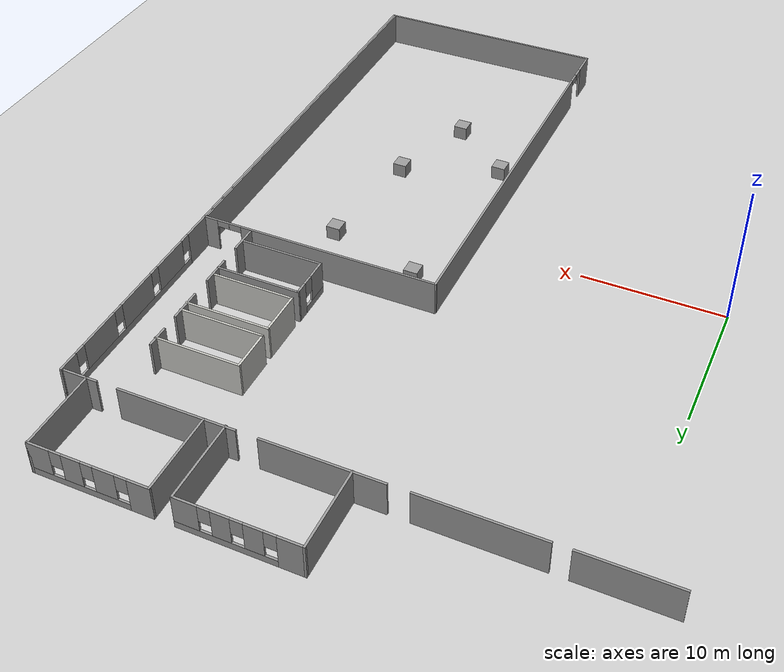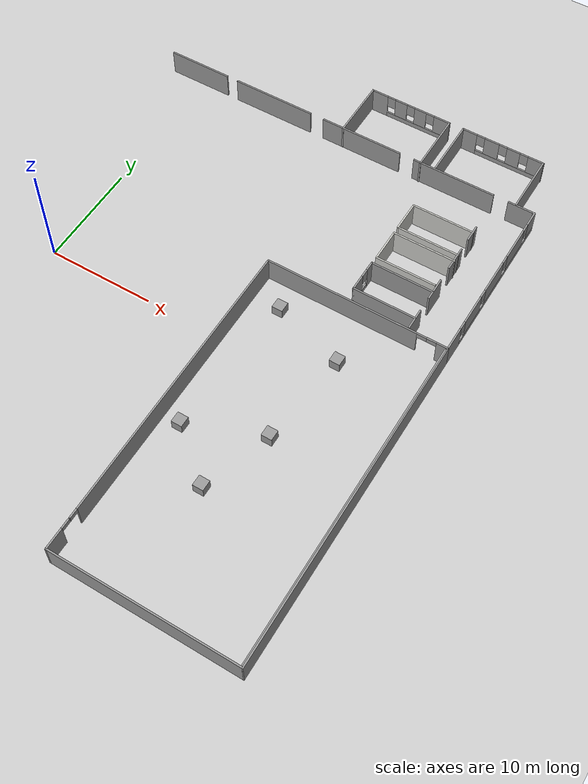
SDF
<sdf version="1.6">
 <world name="default">
  <model name="ground_plane">
   <static>1</static>
   <link name="link">
    <collision name="collision">
     <geometry><plane><normal>0 0 1</normal><size>100 100</size></plane></geometry>
     <surface>
      <contact><collide_bitmask>65535</collide_bitmask></contact>
      <friction><ode><mu>100</mu><mu2>50</mu2></ode></friction>
     </surface>
    </collision>
    <visual name="visual">
     <cast_shadows>0</cast_shadows>
     <geometry><plane><normal>0 0 1</normal><size>100 100</size></plane></geometry>
     <material>
      <script><uri>file://media/materials/scripts/gazebo.material</uri><name>Gazebo/Grey</name></script>
     </material>
    </visual>
   </link>
  </model>
  <model name="firstFloor">
   <pose>-0.1165 3.07366 0 0 -0 0</pose>
   <link name="Wall_0">
    <pose>17.6408 -10.9848 0 0 0 -1.5708</pose>
    <visual name="Wall_0_Visual_0">
     <pose>-1.92288 0 1.25 0 -0 0</pose>
     <geometry><box><size>27.1542 0.15 2.5</size></box></geometry>
     <material>
      <script><uri>file://media/materials/scripts/gazebo.material</uri><name>Gazebo/Grey</name></script>
      <ambient>1 1 1 1</ambient>
     </material>
     <meta><layer>0</layer></meta>
    </visual>
    <collision name="Wall_0_Collision_0">
     <geometry><box><size>27.1542 0.15 2.5</size></box></geometry>
     <pose>-1.92288 0 1.25 0 -0 0</pose>
    </collision>
    <visual name="Wall_0_Visual_2">
     <pose>14.5086 0 1.25 0 -0 0</pose>
     <geometry><box><size>1.98281 0.15 2.5</size></box></geometry>
     <material>
      <script><uri>file://media/materials/scripts/gazebo.material</uri><name>Gazebo/Grey</name></script>
      <ambient>1 1 1 1</ambient>
     </material>
     <meta><layer>0</layer></meta>
    </visual>
    <collision name="Wall_0_Collision_2">
     <geometry><box><size>1.98281 0.15 2.5</size></box></geometry>
     <pose>14.5086 0 1.25 0 -0 0</pose>
    </collision>
    <visual name="Wall_0_Visual_3">
     <pose>12.1042 0 2.25 0 -0 0</pose>
     <geometry><box><size>0.9 0.15 0.5</size></box></geometry>
     <material>
      <script><uri>file://media/materials/scripts/gazebo.material</uri><name>Gazebo/Grey</name></script>
      <ambient>1 1 1 1</ambient>
     </material>
     <meta><layer>0</layer></meta>
    </visual>
    <collision name="Wall_0_Collision_3">
     <geometry><box><size>0.9 0.15 0.5</size></box></geometry>
     <pose>12.1042 0 2.25 0 -0 0</pose>
    </collision>
    <visual name="Wall_0_Visual_4">
     <pose>13.0672 0 2.25 0 -0 0</pose>
     <geometry><box><size>0.9 0.15 0.5</size></box></geometry>
     <material>
      <script><uri>file://media/materials/scripts/gazebo.material</uri><name>Gazebo/Grey</name></script>
      <ambient>1 1 1 1</ambient>
     </material>
     <meta><layer>0</layer></meta>
    </visual>
    <collision name="Wall_0_Collision_4">
     <geometry><box><size>0.9 0.15 0.5</size></box></geometry>
     <pose>13.0672 0 2.25 0 -0 0</pose>
    </collision>
   </link>
   <link name="Wall_1">
    <collision name="Wall_1_Collision">
     <geometry><box><size>17.25 0.15 2.5</size></box></geometry>
     <pose>0 0 1.25 0 -0 0</pose>
    </collision>
    <visual name="Wall_1_Visual">
     <pose>0 0 1.25 0 -0 0</pose>
     <geometry><box><size>17.25 0.15 2.5</size></box></geometry>
     <material>
      <script><uri>file://media/materials/scripts/gazebo.material</uri><name>Gazebo/Grey</name></script>
      <ambient>1 1 1 1</ambient>
     </material>
     <meta><layer>0</layer></meta>
    </visual>
    <pose>26.1908 -26.4098 0 0 -0 0</pose>
   </link>
   <link name="Wall_16">
    <pose>31.1734 10.582 0 0 0 -1.5708</pose>
    <visual name="Wall_16_Visual_0">
     <pose>-5.43447 0 1.25 0 -0 0</pose>
     <geometry><box><size>1.63106 0.15 2.5</size></box></geometry>
     <material>
      <script><uri>file://media/materials/scripts/gazebo.material</uri><name>Gazebo/Grey</name></script>
      <ambient>1 1 1 1</ambient>
     </material>
     <meta><layer>0</layer></meta>
    </visual>
    <collision name="Wall_16_Collision_0">
     <geometry><box><size>1.63106 0.15 2.5</size></box></geometry>
     <pose>-5.43447 0 1.25 0 -0 0</pose>
    </collision>
    <visual name="Wall_16_Visual_1">
     <pose>-2.26346 0 1.25 0 -0 0</pose>
     <geometry><box><size>2.41096 0.15 2.5</size></box></geometry>
     <material>
      <script><uri>file://media/materials/scripts/gazebo.material</uri><name>Gazebo/Grey</name></script>
      <ambient>1 1 1 1</ambient>
     </material>
     <meta><layer>0</layer></meta>
    </visual>
    <collision name="Wall_16_Collision_1">
     <geometry><box><size>2.41096 0.15 2.5</size></box></geometry>
     <pose>-2.26346 0 1.25 0 -0 0</pose>
    </collision>
    <visual name="Wall_16_Visual_2">
     <pose>1.45677 0 1.25 0 -0 0</pose>
     <geometry><box><size>2.22949 0.15 2.5</size></box></geometry>
     <material>
      <script><uri>file://media/materials/scripts/gazebo.material</uri><name>Gazebo/Grey</name></script>
      <ambient>1 1 1 1</ambient>
     </material>
     <meta><layer>0</layer></meta>
    </visual>
    <collision name="Wall_16_Collision_2">
     <geometry><box><size>2.22949 0.15 2.5</size></box></geometry>
     <pose>1.45677 0 1.25 0 -0 0</pose>
    </collision>
    <visual name="Wall_16_Visual_3">
     <pose>4.98576 0 1.25 0 -0 0</pose>
     <geometry><box><size>2.02848 0.15 2.5</size></box></geometry>
     <material>
      <script><uri>file://media/materials/scripts/gazebo.material</uri><name>Gazebo/Grey</name></script>
      <ambient>1 1 1 1</ambient>
     </material>
     <meta><layer>0</layer></meta>
    </visual>
    <collision name="Wall_16_Collision_3">
     <geometry><box><size>2.02848 0.15 2.5</size></box></geometry>
     <pose>4.98576 0 1.25 0 -0 0</pose>
    </collision>
   </link>
   <link name="Wall_2">
    <collision name="Wall_2_Collision">
     <geometry><box><size>30.75 0.15 2.5</size></box></geometry>
     <pose>0 0 1.25 0 -0 0</pose>
    </collision>
    <visual name="Wall_2_Visual">
     <pose>0 0 1.25 0 -0 0</pose>
     <geometry><box><size>30.75 0.15 2.5</size></box></geometry>
     <material>
      <script><uri>file://media/materials/scripts/gazebo.material</uri><name>Gazebo/Grey</name></script>
      <ambient>1 1 1 1</ambient>
     </material>
     <meta><layer>0</layer></meta>
    </visual>
    <pose>34.7408 -11.1098 0 0 -0 1.5708</pose>
   </link>
   <link name="Wall_20">
    <collision name="Wall_20_Collision">
     <geometry><box><size>6 0.15 2.5</size></box></geometry>
     <pose>0 0 1.25 0 -0 0</pose>
    </collision>
    <visual name="Wall_20_Visual">
     <pose>0 0 1.25 0 -0 0</pose>
     <geometry><box><size>6 0.15 2.5</size></box></geometry>
     <material>
      <script><uri>file://media/materials/scripts/gazebo.material</uri><name>Gazebo/CeilingTiled</name></script>
      <ambient>1 1 1 1</ambient>
     </material>
     <meta><layer>0</layer></meta>
    </visual>
    <pose>28.2901 16.1378 0 0 -0 3.14159</pose>
   </link>
   <link name="Wall_21">
    <collision name="Wall_21_Collision">
     <geometry><box><size>3 0.15 2.5</size></box></geometry>
     <pose>0 0 1.25 0 -0 0</pose>
    </collision>
    <visual name="Wall_21_Visual">
     <pose>0 0 1.25 0 -0 0</pose>
     <geometry><box><size>3 0.15 2.5</size></box></geometry>
     <material>
      <script><uri>file://media/materials/scripts/gazebo.material</uri><name>Gazebo/CeilingTiled</name></script>
      <ambient>1 1 1 1</ambient>
     </material>
     <meta><layer>0</layer></meta>
    </visual>
    <pose>25.3651 14.7128 0 0 0 -1.5708</pose>
   </link>
   <link name="Wall_22">
    <collision name="Wall_22_Collision">
     <geometry><box><size>6 0.15 2.5</size></box></geometry>
     <pose>0 0 1.25 0 -0 0</pose>
    </collision>
    <visual name="Wall_22_Visual">
     <pose>0 0 1.25 0 -0 0</pose>
     <geometry><box><size>6 0.15 2.5</size></box></geometry>
     <material>
      <script><uri>file://media/materials/scripts/gazebo.material</uri><name>Gazebo/CeilingTiled</name></script>
      <ambient>1 1 1 1</ambient>
     </material>
     <meta><layer>0</layer></meta>
    </visual>
    <pose>28.2901 13.2878 0 0 -0 0</pose>
   </link>
   <link name="Wall_24">
    <collision name="Wall_24_Collision">
     <geometry><box><size>6 0.15 2.5</size></box></geometry>
     <pose>0 0 1.25 0 -0 0</pose>
    </collision>
    <visual name="Wall_24_Visual">
     <pose>0 0 1.25 0 -0 0</pose>
     <geometry><box><size>6 0.15 2.5</size></box></geometry>
     <material>
      <script><uri>file://media/materials/scripts/gazebo.material</uri><name>Gazebo/CeilingTiled</name></script>
      <ambient>1 1 1 1</ambient>
     </material>
     <meta><layer>0</layer></meta>
    </visual>
    <pose>28.3012 12.5835 0 0 -0 3.14159</pose>
   </link>
   <link name="Wall_25">
    <collision name="Wall_25_Collision">
     <geometry><box><size>3.25 0.15 2.5</size></box></geometry>
     <pose>0 0 1.25 0 -0 0</pose>
    </collision>
    <visual name="Wall_25_Visual">
     <pose>0 0 1.25 0 -0 0</pose>
     <geometry><box><size>3.25 0.15 2.5</size></box></geometry>
     <material>
      <script><uri>file://media/materials/scripts/gazebo.material</uri><name>Gazebo/CeilingTiled</name></script>
      <ambient>1 1 1 1</ambient>
     </material>
     <meta><layer>0</layer></meta>
    </visual>
    <pose>25.3762 11.0335 0 0 0 -1.5708</pose>
   </link>
   <link name="Wall_26">
    <collision name="Wall_26_Collision">
     <geometry><box><size>5.75 0.15 2.5</size></box></geometry>
     <pose>0 0 1.25 0 -0 0</pose>
    </collision>
    <visual name="Wall_26_Visual">
     <pose>0 0 1.25 0 -0 0</pose>
     <geometry><box><size>5.75 0.15 2.5</size></box></geometry>
     <material>
      <script><uri>file://media/materials/scripts/gazebo.material</uri><name>Gazebo/CeilingTiled</name></script>
      <ambient>1 1 1 1</ambient>
     </material>
     <meta><layer>0</layer></meta>
    </visual>
    <pose>28.1762 9.48348 0 0 -0 0</pose>
   </link>
   <link name="Wall_28">
    <collision name="Wall_28_Collision">
     <geometry><box><size>6 0.15 2.5</size></box></geometry>
     <pose>0 0 1.25 0 -0 0</pose>
    </collision>
    <visual name="Wall_28_Visual">
     <pose>0 0 1.25 0 -0 0</pose>
     <geometry><box><size>6 0.15 2.5</size></box></geometry>
     <material>
      <script><uri>file://media/materials/scripts/gazebo.material</uri><name>Gazebo/Grey</name></script>
      <ambient>1 1 1 1</ambient>
     </material>
     <meta><layer>0</layer></meta>
    </visual>
    <pose>28.2321 8.78663 0 0 -0 3.14159</pose>
   </link>
   <link name="Wall_29">
    <pose>25.3071 7.23663 0 0 0 -1.5708</pose>
    <visual name="Wall_29_Visual_0">
     <pose>-1.14911 0 1.25 0 -0 0</pose>
     <geometry><box><size>0.951772 0.15 2.5</size></box></geometry>
     <material>
      <script><uri>file://media/materials/scripts/gazebo.material</uri><name>Gazebo/Grey</name></script>
      <ambient>1 1 1 1</ambient>
     </material>
     <meta><layer>0</layer></meta>
    </visual>
    <collision name="Wall_29_Collision_0">
     <geometry><box><size>0.951772 0.15 2.5</size></box></geometry>
     <pose>-1.14911 0 1.25 0 -0 0</pose>
    </collision>
    <visual name="Wall_29_Visual_1">
     <pose>0.475886 0 0.25 0 -0 0</pose>
     <geometry><box><size>2.29823 0.15 0.5</size></box></geometry>
     <material>
      <script><uri>file://media/materials/scripts/gazebo.material</uri><name>Gazebo/Grey</name></script>
      <ambient>1 1 1 1</ambient>
     </material>
     <meta><layer>0</layer></meta>
    </visual>
    <collision name="Wall_29_Collision_1">
     <geometry><box><size>2.29823 0.15 0.5</size></box></geometry>
     <pose>0.475886 0 0.25 0 -0 0</pose>
    </collision>
    <visual name="Wall_29_Visual_2">
     <pose>0.875886 0 1.5 0 -0 0</pose>
     <geometry><box><size>1.49823 0.15 2</size></box></geometry>
     <material>
      <script><uri>file://media/materials/scripts/gazebo.material</uri><name>Gazebo/Grey</name></script>
      <ambient>1 1 1 1</ambient>
     </material>
     <meta><layer>0</layer></meta>
    </visual>
    <collision name="Wall_29_Collision_2">
     <geometry><box><size>1.49823 0.15 2</size></box></geometry>
     <pose>0.875886 0 1.5 0 -0 0</pose>
    </collision>
    <visual name="Wall_29_Visual_3">
     <pose>-0.273228 0 1.9 0 -0 0</pose>
     <geometry><box><size>0.8 0.15 1.2</size></box></geometry>
     <material>
      <script><uri>file://media/materials/scripts/gazebo.material</uri><name>Gazebo/Grey</name></script>
      <ambient>1 1 1 1</ambient>
     </material>
     <meta><layer>0</layer></meta>
    </visual>
    <collision name="Wall_29_Collision_3">
     <geometry><box><size>0.8 0.15 1.2</size></box></geometry>
     <pose>-0.273228 0 1.9 0 -0 0</pose>
    </collision>
   </link>
   <link name="Wall_30">
    <collision name="Wall_30_Collision">
     <geometry><box><size>6 0.15 2.5</size></box></geometry>
     <pose>0 0 1.25 0 -0 0</pose>
    </collision>
    <visual name="Wall_30_Visual">
     <pose>0 0 1.25 0 -0 0</pose>
     <geometry><box><size>6 0.15 2.5</size></box></geometry>
     <material>
      <script><uri>file://media/materials/scripts/gazebo.material</uri><name>Gazebo/Grey</name></script>
      <ambient>1 1 1 1</ambient>
     </material>
     <meta><layer>0</layer></meta>
    </visual>
    <pose>28.2321 5.68663 0 0 -0 0</pose>
   </link>
   <link name="Wall_32">
    <pose>15.7968 20.7947 0 0 -0 3.14159</pose>
    <visual name="Wall_32_Visual_0">
     <pose>-17.6843 0 1.25 0 -0 0</pose>
     <geometry><box><size>2.38139 0.15 2.5</size></box></geometry>
     <material>
      <script><uri>file://media/materials/scripts/gazebo.material</uri><name>Gazebo/Grey</name></script>
      <ambient>1 1 1 1</ambient>
     </material>
     <meta><layer>0</layer></meta>
    </visual>
    <collision name="Wall_32_Collision_0">
     <geometry><box><size>2.38139 0.15 2.5</size></box></geometry>
     <pose>-17.6843 0 1.25 0 -0 0</pose>
    </collision>
    <visual name="Wall_32_Visual_1">
     <pose>-11.0804 0 1.25 0 -0 0</pose>
     <geometry><box><size>8.02647 0.15 2.5</size></box></geometry>
     <material>
      <script><uri>file://media/materials/scripts/gazebo.material</uri><name>Gazebo/Grey</name></script>
      <ambient>1 1 1 1</ambient>
     </material>
     <meta><layer>0</layer></meta>
    </visual>
    <collision name="Wall_32_Collision_1">
     <geometry><box><size>8.02647 0.15 2.5</size></box></geometry>
     <pose>-11.0804 0 1.25 0 -0 0</pose>
    </collision>
    <visual name="Wall_32_Visual_2">
     <pose>-1.63402 0 1.25 0 -0 0</pose>
     <geometry><box><size>8.06625 0.15 2.5</size></box></geometry>
     <material>
      <script><uri>file://media/materials/scripts/gazebo.material</uri><name>Gazebo/Grey</name></script>
      <ambient>1 1 1 1</ambient>
     </material>
     <meta><layer>0</layer></meta>
    </visual>
    <collision name="Wall_32_Collision_2">
     <geometry><box><size>8.06625 0.15 2.5</size></box></geometry>
     <pose>-1.63402 0 1.25 0 -0 0</pose>
    </collision>
    <visual name="Wall_32_Visual_3">
     <pose>7.79245 0 1.25 0 -0 0</pose>
     <geometry><box><size>8.0867 0.15 2.5</size></box></geometry>
     <material>
      <script><uri>file://media/materials/scripts/gazebo.material</uri><name>Gazebo/Grey</name></script>
      <ambient>1 1 1 1</ambient>
     </material>
     <meta><layer>0</layer></meta>
    </visual>
    <collision name="Wall_32_Collision_3">
     <geometry><box><size>8.0867 0.15 2.5</size></box></geometry>
     <pose>7.79245 0 1.25 0 -0 0</pose>
    </collision>
    <visual name="Wall_32_Visual_4">
     <pose>16.0304 0 1.25 0 -0 0</pose>
     <geometry><box><size>6.1892 0.15 2.5</size></box></geometry>
     <material>
      <script><uri>file://media/materials/scripts/gazebo.material</uri><name>Gazebo/Grey</name></script>
      <ambient>1 1 1 1</ambient>
     </material>
     <meta><layer>0</layer></meta>
    </visual>
    <collision name="Wall_32_Collision_4">
     <geometry><box><size>6.1892 0.15 2.5</size></box></geometry>
     <pose>16.0304 0 1.25 0 -0 0</pose>
    </collision>
   </link>
   <link name="Wall_4">
    <collision name="Wall_4_Collision">
     <geometry><box><size>31 0.15 2.5</size></box></geometry>
     <pose>0 0 1.25 0 -0 0</pose>
    </collision>
    <visual name="Wall_4_Visual">
     <pose>0 0 1.25 0 -0 0</pose>
     <geometry><box><size>31 0.15 2.5</size></box></geometry>
     <material>
      <script><uri>file://media/materials/scripts/gazebo.material</uri><name>Gazebo/Grey</name></script>
      <ambient>1 1 1 1</ambient>
     </material>
     <meta><layer>0</layer></meta>
    </visual>
    <pose>34.8468 -10.9803 0 0 0 -1.5708</pose>
   </link>
   <link name="Wall_46">
    <collision name="Wall_46_Collision">
     <geometry><box><size>5.75 0.15 2.5</size></box></geometry>
     <pose>0 0 1.25 0 -0 0</pose>
    </collision>
    <visual name="Wall_46_Visual">
     <pose>0 0 1.25 0 -0 0</pose>
     <geometry><box><size>5.75 0.15 2.5</size></box></geometry>
     <material>
      <script><uri>file://media/materials/scripts/gazebo.material</uri><name>Gazebo/Grey</name></script>
      <ambient>1 1 1 1</ambient>
     </material>
     <meta><layer>0</layer></meta>
    </visual>
    <pose>15.5217 23.5782 0 0 0 -1.5708</pose>
   </link>
   <link name="Wall_48">
    <pose>19.5461 26.3782 0 0 -0 0</pose>
    <visual name="Wall_48_Visual_0">
     <pose>-3.24117 0 1.25 0 -0 0</pose>
     <geometry><box><size>1.71653 0.15 2.5</size></box></geometry>
     <material>
      <script><uri>file://media/materials/scripts/gazebo.material</uri><name>Gazebo/Grey</name></script>
      <ambient>1 1 1 1</ambient>
     </material>
     <meta><layer>0</layer></meta>
    </visual>
    <collision name="Wall_48_Collision_0">
     <geometry><box><size>1.71653 0.15 2.5</size></box></geometry>
     <pose>-3.24117 0 1.25 0 -0 0</pose>
    </collision>
    <visual name="Wall_48_Visual_1">
     <pose>0.858265 0 0.25 0 -0 0</pose>
     <geometry><box><size>6.48234 0.15 0.5</size></box></geometry>
     <material>
      <script><uri>file://media/materials/scripts/gazebo.material</uri><name>Gazebo/Grey</name></script>
      <ambient>1 1 1 1</ambient>
     </material>
     <meta><layer>0</layer></meta>
    </visual>
    <collision name="Wall_48_Collision_1">
     <geometry><box><size>6.48234 0.15 0.5</size></box></geometry>
     <pose>0.858265 0 0.25 0 -0 0</pose>
    </collision>
    <visual name="Wall_48_Visual_2">
     <pose>-0.96873 0 1.5 0 -0 0</pose>
     <geometry><box><size>1.22835 0.15 2</size></box></geometry>
     <material>
      <script><uri>file://media/materials/scripts/gazebo.material</uri><name>Gazebo/Grey</name></script>
      <ambient>1 1 1 1</ambient>
     </material>
     <meta><layer>0</layer></meta>
    </visual>
    <collision name="Wall_48_Collision_2">
     <geometry><box><size>1.22835 0.15 2</size></box></geometry>
     <pose>-0.96873 0 1.5 0 -0 0</pose>
    </collision>
    <visual name="Wall_48_Visual_3">
     <pose>1.04974 0 1.5 0 -0 0</pose>
     <geometry><box><size>1.2086 0.15 2</size></box></geometry>
     <material>
      <script><uri>file://media/materials/scripts/gazebo.material</uri><name>Gazebo/Grey</name></script>
      <ambient>1 1 1 1</ambient>
     </material>
     <meta><layer>0</layer></meta>
    </visual>
    <collision name="Wall_48_Collision_3">
     <geometry><box><size>1.2086 0.15 2</size></box></geometry>
     <pose>1.04974 0 1.5 0 -0 0</pose>
    </collision>
    <visual name="Wall_48_Visual_4">
     <pose>3.27674 0 1.5 0 -0 0</pose>
     <geometry><box><size>1.64539 0.15 2</size></box></geometry>
     <material>
      <script><uri>file://media/materials/scripts/gazebo.material</uri><name>Gazebo/Grey</name></script>
      <ambient>1 1 1 1</ambient>
     </material>
     <meta><layer>0</layer></meta>
    </visual>
    <collision name="Wall_48_Collision_4">
     <geometry><box><size>1.64539 0.15 2</size></box></geometry>
     <pose>3.27674 0 1.5 0 -0 0</pose>
    </collision>
    <visual name="Wall_48_Visual_5">
     <pose>-1.9829 0 1.9 0 -0 0</pose>
     <geometry><box><size>0.8 0.15 1.2</size></box></geometry>
     <material>
      <script><uri>file://media/materials/scripts/gazebo.material</uri><name>Gazebo/Grey</name></script>
      <ambient>1 1 1 1</ambient>
     </material>
     <meta><layer>0</layer></meta>
    </visual>
    <collision name="Wall_48_Collision_5">
     <geometry><box><size>0.8 0.15 1.2</size></box></geometry>
     <pose>-1.9829 0 1.9 0 -0 0</pose>
    </collision>
    <visual name="Wall_48_Visual_6">
     <pose>0.045444 0 1.9 0 -0 0</pose>
     <geometry><box><size>0.8 0.15 1.2</size></box></geometry>
     <material>
      <script><uri>file://media/materials/scripts/gazebo.material</uri><name>Gazebo/Grey</name></script>
      <ambient>1 1 1 1</ambient>
     </material>
     <meta><layer>0</layer></meta>
    </visual>
    <collision name="Wall_48_Collision_6">
     <geometry><box><size>0.8 0.15 1.2</size></box></geometry>
     <pose>0.045444 0 1.9 0 -0 0</pose>
    </collision>
    <visual name="Wall_48_Visual_7">
     <pose>2.05404 0 1.9 0 -0 0</pose>
     <geometry><box><size>0.8 0.15 1.2</size></box></geometry>
     <material>
      <script><uri>file://media/materials/scripts/gazebo.material</uri><name>Gazebo/Grey</name></script>
      <ambient>1 1 1 1</ambient>
     </material>
     <meta><layer>0</layer></meta>
    </visual>
    <collision name="Wall_48_Collision_7">
     <geometry><box><size>0.8 0.15 1.2</size></box></geometry>
     <pose>2.05404 0 1.9 0 -0 0</pose>
    </collision>
   </link>
   <link name="Wall_49">
    <collision name="Wall_49_Collision">
     <geometry><box><size>5.75 0.15 2.5</size></box></geometry>
     <pose>0 0 1.25 0 -0 0</pose>
    </collision>
    <visual name="Wall_49_Visual">
     <pose>0 0 1.25 0 -0 0</pose>
     <geometry><box><size>5.75 0.15 2.5</size></box></geometry>
     <material>
      <script><uri>file://media/materials/scripts/gazebo.material</uri><name>Gazebo/Grey</name></script>
      <ambient>1 1 1 1</ambient>
     </material>
     <meta><layer>0</layer></meta>
    </visual>
    <pose>23.5705 23.5384 0 0 0 -1.5708</pose>
   </link>
   <link name="Wall_51">
    <collision name="Wall_51_Collision">
     <geometry><box><size>5.75 0.15 2.5</size></box></geometry>
     <pose>0 0 1.25 0 -0 0</pose>
    </collision>
    <visual name="Wall_51_Visual">
     <pose>0 0 1.25 0 -0 0</pose>
     <geometry><box><size>5.75 0.15 2.5</size></box></geometry>
     <material>
      <script><uri>file://media/materials/scripts/gazebo.material</uri><name>Gazebo/Grey</name></script>
      <ambient>1 1 1 1</ambient>
     </material>
     <meta><layer>0</layer></meta>
    </visual>
    <pose>24.9879 23.6098 0 0 -0 1.5708</pose>
   </link>
   <link name="Wall_53">
    <pose>29.0322 26.4098 0 0 -0 0</pose>
    <visual name="Wall_53_Visual_0">
     <pose>-3.35683 0 1.25 0 -0 0</pose>
     <geometry><box><size>1.52499 0.15 2.5</size></box></geometry>
     <material>
      <script><uri>file://media/materials/scripts/gazebo.material</uri><name>Gazebo/Grey</name></script>
      <ambient>1 1 1 1</ambient>
     </material>
     <meta><layer>0</layer></meta>
    </visual>
    <collision name="Wall_53_Collision_0">
     <geometry><box><size>1.52499 0.15 2.5</size></box></geometry>
     <pose>-3.35683 0 1.25 0 -0 0</pose>
    </collision>
    <visual name="Wall_53_Visual_1">
     <pose>0.762497 0 0.25 0 -0 0</pose>
     <geometry><box><size>6.71365 0.15 0.5</size></box></geometry>
     <material>
      <script><uri>file://media/materials/scripts/gazebo.material</uri><name>Gazebo/Grey</name></script>
      <ambient>1 1 1 1</ambient>
     </material>
     <meta><layer>0</layer></meta>
    </visual>
    <collision name="Wall_53_Collision_1">
     <geometry><box><size>6.71365 0.15 0.5</size></box></geometry>
     <pose>0.762497 0 0.25 0 -0 0</pose>
    </collision>
    <visual name="Wall_53_Visual_2">
     <pose>-1.06856 0 1.5 0 -0 0</pose>
     <geometry><box><size>1.45153 0.15 2</size></box></geometry>
     <material>
      <script><uri>file://media/materials/scripts/gazebo.material</uri><name>Gazebo/Grey</name></script>
      <ambient>1 1 1 1</ambient>
     </material>
     <meta><layer>0</layer></meta>
    </visual>
    <collision name="Wall_53_Collision_2">
     <geometry><box><size>1.45153 0.15 2</size></box></geometry>
     <pose>-1.06856 0 1.5 0 -0 0</pose>
    </collision>
    <visual name="Wall_53_Visual_3">
     <pose>1.10034 0 1.5 0 -0 0</pose>
     <geometry><box><size>1.28627 0.15 2</size></box></geometry>
     <material>
      <script><uri>file://media/materials/scripts/gazebo.material</uri><name>Gazebo/Grey</name></script>
      <ambient>1 1 1 1</ambient>
     </material>
     <meta><layer>0</layer></meta>
    </visual>
    <collision name="Wall_53_Collision_3">
     <geometry><box><size>1.28627 0.15 2</size></box></geometry>
     <pose>1.10034 0 1.5 0 -0 0</pose>
    </collision>
    <visual name="Wall_53_Visual_4">
     <pose>3.3314 0 1.5 0 -0 0</pose>
     <geometry><box><size>1.57585 0.15 2</size></box></geometry>
     <material>
      <script><uri>file://media/materials/scripts/gazebo.material</uri><name>Gazebo/Grey</name></script>
      <ambient>1 1 1 1</ambient>
     </material>
     <meta><layer>0</layer></meta>
    </visual>
    <collision name="Wall_53_Collision_4">
     <geometry><box><size>1.57585 0.15 2</size></box></geometry>
     <pose>3.3314 0 1.5 0 -0 0</pose>
    </collision>
    <visual name="Wall_53_Visual_5">
     <pose>-2.19433 0 1.9 0 -0 0</pose>
     <geometry><box><size>0.8 0.15 1.2</size></box></geometry>
     <material>
      <script><uri>file://media/materials/scripts/gazebo.material</uri><name>Gazebo/Grey</name></script>
      <ambient>1 1 1 1</ambient>
     </material>
     <meta><layer>0</layer></meta>
    </visual>
    <collision name="Wall_53_Collision_5">
     <geometry><box><size>0.8 0.15 1.2</size></box></geometry>
     <pose>-2.19433 0 1.9 0 -0 0</pose>
    </collision>
    <visual name="Wall_53_Visual_6">
     <pose>0.057199 0 1.9 0 -0 0</pose>
     <geometry><box><size>0.8 0.15 1.2</size></box></geometry>
     <material>
      <script><uri>file://media/materials/scripts/gazebo.material</uri><name>Gazebo/Grey</name></script>
      <ambient>1 1 1 1</ambient>
     </material>
     <meta><layer>0</layer></meta>
    </visual>
    <collision name="Wall_53_Collision_6">
     <geometry><box><size>0.8 0.15 1.2</size></box></geometry>
     <pose>0.057199 0 1.9 0 -0 0</pose>
    </collision>
    <visual name="Wall_53_Visual_7">
     <pose>2.14347 0 1.9 0 -0 0</pose>
     <geometry><box><size>0.8 0.15 1.2</size></box></geometry>
     <material>
      <script><uri>file://media/materials/scripts/gazebo.material</uri><name>Gazebo/Grey</name></script>
      <ambient>1 1 1 1</ambient>
     </material>
     <meta><layer>0</layer></meta>
    </visual>
    <collision name="Wall_53_Collision_7">
     <geometry><box><size>0.8 0.15 1.2</size></box></geometry>
     <pose>2.14347 0 1.9 0 -0 0</pose>
    </collision>
   </link>
   <link name="Wall_54">
    <collision name="Wall_54_Collision">
     <geometry><box><size>5.75 0.15 2.5</size></box></geometry>
     <pose>0 0 1.25 0 -0 0</pose>
    </collision>
    <visual name="Wall_54_Visual">
     <pose>0 0 1.25 0 -0 0</pose>
     <geometry><box><size>5.75 0.15 2.5</size></box></geometry>
     <material>
      <script><uri>file://media/materials/scripts/gazebo.material</uri><name>Gazebo/Grey</name></script>
      <ambient>1 1 1 1</ambient>
     </material>
     <meta><layer>0</layer></meta>
    </visual>
    <pose>33.0368 23.6098 0 0 0 -1.5708</pose>
   </link>
   <link name="Wall_7">
    <pose>26.2438 4.44243 0 0 -0 0.000262</pose>
    <visual name="Wall_7_Visual_0">
     <pose>-1.45777 0 1.25 0 -0 0</pose>
     <geometry><box><size>14.4405 0.15 2.5</size></box></geometry>
     <material>
      <script><uri>file://media/materials/scripts/gazebo.material</uri><name>Gazebo/Grey</name></script>
      <ambient>1 1 1 1</ambient>
     </material>
     <meta><layer>0</layer></meta>
    </visual>
    <collision name="Wall_7_Collision_0">
     <geometry><box><size>14.4405 0.15 2.5</size></box></geometry>
     <pose>-1.45777 0 1.25 0 -0 0</pose>
    </collision>
    <visual name="Wall_7_Visual_2">
     <pose>8.12388 0 1.25 0 -0 0</pose>
     <geometry><box><size>1.10824 0.15 2.5</size></box></geometry>
     <material>
      <script><uri>file://media/materials/scripts/gazebo.material</uri><name>Gazebo/Grey</name></script>
      <ambient>1 1 1 1</ambient>
     </material>
     <meta><layer>0</layer></meta>
    </visual>
    <collision name="Wall_7_Collision_2">
     <geometry><box><size>1.10824 0.15 2.5</size></box></geometry>
     <pose>8.12388 0 1.25 0 -0 0</pose>
    </collision>
    <visual name="Wall_7_Visual_3">
     <pose>6.21246 0 2.25 0 -0 0</pose>
     <geometry><box><size>0.9 0.15 0.5</size></box></geometry>
     <material>
      <script><uri>file://media/materials/scripts/gazebo.material</uri><name>Gazebo/Grey</name></script>
      <ambient>1 1 1 1</ambient>
     </material>
     <meta><layer>0</layer></meta>
    </visual>
    <collision name="Wall_7_Collision_3">
     <geometry><box><size>0.9 0.15 0.5</size></box></geometry>
     <pose>6.21246 0 2.25 0 -0 0</pose>
    </collision>
    <visual name="Wall_7_Visual_4">
     <pose>7.11976 0 2.25 0 -0 0</pose>
     <geometry><box><size>0.9 0.15 0.5</size></box></geometry>
     <material>
      <script><uri>file://media/materials/scripts/gazebo.material</uri><name>Gazebo/Grey</name></script>
      <ambient>1 1 1 1</ambient>
     </material>
     <meta><layer>0</layer></meta>
    </visual>
    <collision name="Wall_7_Collision_4">
     <geometry><box><size>0.9 0.15 0.5</size></box></geometry>
     <pose>7.11976 0 2.25 0 -0 0</pose>
    </collision>
   </link>
   <link name="Wall_8">
    <pose>34.8468 12.6197 0 0 -0 1.5708</pose>
    <visual name="Wall_8_Visual_0">
     <pose>-7.09151 0 1.25 0 -0 0</pose>
     <geometry><box><size>2.31697 0.15 2.5</size></box></geometry>
     <material>
      <script><uri>file://media/materials/scripts/gazebo.material</uri><name>Gazebo/Grey</name></script>
      <ambient>1 1 1 1</ambient>
     </material>
     <meta><layer>0</layer></meta>
    </visual>
    <collision name="Wall_8_Collision_0">
     <geometry><box><size>2.31697 0.15 2.5</size></box></geometry>
     <pose>-7.09151 0 1.25 0 -0 0</pose>
    </collision>
    <visual name="Wall_8_Visual_1">
     <pose>1.15849 0 0.25 0 -0 0</pose>
     <geometry><box><size>14.183 0.15 0.5</size></box></geometry>
     <material>
      <script><uri>file://media/materials/scripts/gazebo.material</uri><name>Gazebo/Grey</name></script>
      <ambient>1 1 1 1</ambient>
     </material>
     <meta><layer>0</layer></meta>
    </visual>
    <collision name="Wall_8_Collision_1">
     <geometry><box><size>14.183 0.15 0.5</size></box></geometry>
     <pose>1.15849 0 0.25 0 -0 0</pose>
    </collision>
    <visual name="Wall_8_Visual_2">
     <pose>-3.68153 0 1.5 0 -0 0</pose>
     <geometry><box><size>2.903 0.15 2</size></box></geometry>
     <material>
      <script><uri>file://media/materials/scripts/gazebo.material</uri><name>Gazebo/Grey</name></script>
      <ambient>1 1 1 1</ambient>
     </material>
     <meta><layer>0</layer></meta>
    </visual>
    <collision name="Wall_8_Collision_2">
     <geometry><box><size>2.903 0.15 2</size></box></geometry>
     <pose>-3.68153 0 1.5 0 -0 0</pose>
    </collision>
    <visual name="Wall_8_Visual_3">
     <pose>0.233074 0 1.5 0 -0 0</pose>
     <geometry><box><size>3.3262 0.15 2</size></box></geometry>
     <material>
      <script><uri>file://media/materials/scripts/gazebo.material</uri><name>Gazebo/Grey</name></script>
      <ambient>1 1 1 1</ambient>
     </material>
     <meta><layer>0</layer></meta>
    </visual>
    <collision name="Wall_8_Collision_3">
     <geometry><box><size>3.3262 0.15 2</size></box></geometry>
     <pose>0.233074 0 1.5 0 -0 0</pose>
    </collision>
    <visual name="Wall_8_Visual_4">
     <pose>4.30637 0 1.5 0 -0 0</pose>
     <geometry><box><size>3.2204 0.15 2</size></box></geometry>
     <material>
      <script><uri>file://media/materials/scripts/gazebo.material</uri><name>Gazebo/Grey</name></script>
      <ambient>1 1 1 1</ambient>
     </material>
     <meta><layer>0</layer></meta>
    </visual>
    <collision name="Wall_8_Collision_4">
     <geometry><box><size>3.2204 0.15 2</size></box></geometry>
     <pose>4.30637 0 1.5 0 -0 0</pose>
    </collision>
    <visual name="Wall_8_Visual_5">
     <pose>7.48329 0 1.5 0 -0 0</pose>
     <geometry><box><size>1.53343 0.15 2</size></box></geometry>
     <material>
      <script><uri>file://media/materials/scripts/gazebo.material</uri><name>Gazebo/Grey</name></script>
      <ambient>1 1 1 1</ambient>
     </material>
     <meta><layer>0</layer></meta>
    </visual>
    <collision name="Wall_8_Collision_5">
     <geometry><box><size>1.53343 0.15 2</size></box></geometry>
     <pose>7.48329 0 1.5 0 -0 0</pose>
    </collision>
    <visual name="Wall_8_Visual_6">
     <pose>-5.53303 0 1.9 0 -0 0</pose>
     <geometry><box><size>0.8 0.15 1.2</size></box></geometry>
     <material>
      <script><uri>file://media/materials/scripts/gazebo.material</uri><name>Gazebo/Grey</name></script>
      <ambient>1 1 1 1</ambient>
     </material>
     <meta><layer>0</layer></meta>
    </visual>
    <collision name="Wall_8_Collision_6">
     <geometry><box><size>0.8 0.15 1.2</size></box></geometry>
     <pose>-5.53303 0 1.9 0 -0 0</pose>
    </collision>
    <visual name="Wall_8_Visual_7">
     <pose>-1.83003 0 1.9 0 -0 0</pose>
     <geometry><box><size>0.8 0.15 1.2</size></box></geometry>
     <material>
      <script><uri>file://media/materials/scripts/gazebo.material</uri><name>Gazebo/Grey</name></script>
      <ambient>1 1 1 1</ambient>
     </material>
     <meta><layer>0</layer></meta>
    </visual>
    <collision name="Wall_8_Collision_7">
     <geometry><box><size>0.8 0.15 1.2</size></box></geometry>
     <pose>-1.83003 0 1.9 0 -0 0</pose>
    </collision>
    <visual name="Wall_8_Visual_8">
     <pose>2.29617 0 1.9 0 -0 0</pose>
     <geometry><box><size>0.8 0.15 1.2</size></box></geometry>
     <material>
      <script><uri>file://media/materials/scripts/gazebo.material</uri><name>Gazebo/Grey</name></script>
      <ambient>1 1 1 1</ambient>
     </material>
     <meta><layer>0</layer></meta>
    </visual>
    <collision name="Wall_8_Collision_8">
     <geometry><box><size>0.8 0.15 1.2</size></box></geometry>
     <pose>2.29617 0 1.9 0 -0 0</pose>
    </collision>
    <visual name="Wall_8_Visual_9">
     <pose>6.31657 0 1.9 0 -0 0</pose>
     <geometry><box><size>0.8 0.15 1.2</size></box></geometry>
     <material>
      <script><uri>file://media/materials/scripts/gazebo.material</uri><name>Gazebo/Grey</name></script>
      <ambient>1 1 1 1</ambient>
     </material>
     <meta><layer>0</layer></meta>
    </visual>
    <collision name="Wall_8_Collision_9">
     <geometry><box><size>0.8 0.15 1.2</size></box></geometry>
     <pose>6.31657 0 1.9 0 -0 0</pose>
    </collision>
   </link>
   <static>1</static>
  </model>
  <model name="unit_box_0">
   <pose>19.2248 -8.57891 0.499995 0 1e-05 0</pose>
   <link name="link">
    <inertial>
     <mass>1</mass>
     <inertia>
      <ixx>0.166667</ixx>
      <ixy>0</ixy>
      <ixz>0</ixz>
      <iyy>0.166667</iyy>
      <iyz>0</iyz>
      <izz>0.166667</izz>
     </inertia>
    </inertial>
    <collision name="collision"><geometry><box><size>1 1 1</size></box></geometry></collision>
    <visual name="visual">
     <geometry><box><size>1 1 1</size></box></geometry>
     <material>
      <script><name>Gazebo/Grey</name><uri>file://media/materials/scripts/gazebo.material</uri></script>
     </material>
    </visual>
   </link>
  </model>
  <model name="unit_box_1">
   <pose>23.8144 -12.3735 0.499995 1e-05 -0 0</pose>
   <link name="link">
    <inertial>
     <mass>1</mass>
     <inertia>
      <ixx>0.166667</ixx>
      <ixy>0</ixy>
      <ixz>0</ixz>
      <iyy>0.166667</iyy>
      <iyz>0</iyz>
      <izz>0.166667</izz>
     </inertia>
    </inertial>
    <collision name="collision"><geometry><box><size>1 1 1</size></box></geometry></collision>
    <visual name="visual">
     <geometry><box><size>1 1 1</size></box></geometry>
     <material>
      <script><name>Gazebo/Grey</name><uri>file://media/materials/scripts/gazebo.material</uri></script>
     </material>
    </visual>
   </link>
  </model>
  <model name="unit_box_2">
   <pose>27.0786 2.8723 0.499995 0 1e-05 0</pose>
   <link name="link">
    <inertial>
     <mass>1</mass>
     <inertia>
      <ixx>0.166667</ixx>
      <ixy>0</ixy>
      <ixz>0</ixz>
      <iyy>0.166667</iyy>
      <iyz>0</iyz>
      <izz>0.166667</izz>
     </inertia>
    </inertial>
    <collision name="collision"><geometry><box><size>1 1 1</size></box></geometry></collision>
    <visual name="visual">
     <geometry><box><size>1 1 1</size></box></geometry>
     <material>
      <script><name>Gazebo/Grey</name><uri>file://media/materials/scripts/gazebo.material</uri></script>
     </material>
    </visual>
   </link>
  </model>
  <model name="unit_box_3">
   <pose>26.0065 -5.91678 0.499995 1e-05 -0 0</pose>
   <link name="link">
    <inertial>
     <mass>1</mass>
     <inertia>
      <ixx>0.166667</ixx>
      <ixy>0</ixy>
      <ixz>0</ixz>
      <iyy>0.166667</iyy>
      <iyz>0</iyz>
      <izz>0.166667</izz>
     </inertia>
    </inertial>
    <collision name="collision"><geometry><box><size>1 1 1</size></box></geometry></collision>
    <visual name="visual">
     <geometry><box><size>1 1 1</size></box></geometry>
     <material>
      <script><name>Gazebo/Grey</name><uri>file://media/materials/scripts/gazebo.material</uri></script>
     </material>
    </visual>
   </link>
  </model>
  <model name="unit_box_4">
   <pose>20.237 4.96859 0.499995 0 1e-05 0</pose>
   <link name="link">
    <inertial>
     <mass>1</mass>
     <inertia>
      <ixx>0.166667</ixx>
      <ixy>0</ixy>
      <ixz>0</ixz>
      <iyy>0.166667</iyy>
      <iyz>0</iyz>
      <izz>0.166667</izz>
     </inertia>
    </inertial>
    <collision name="collision"><geometry><box><size>1 1 1</size></box></geometry></collision>
    <visual name="visual">
     <geometry><box><size>1 1 1</size></box></geometry>
     <material>
      <script><name>Gazebo/Grey</name><uri>file://media/materials/scripts/gazebo.material</uri></script>
     </material>
    </visual>
   </link>
  </model>
 </world>
</sdf>
